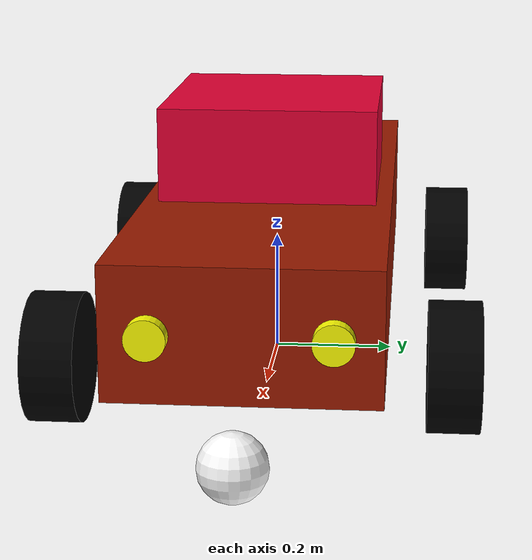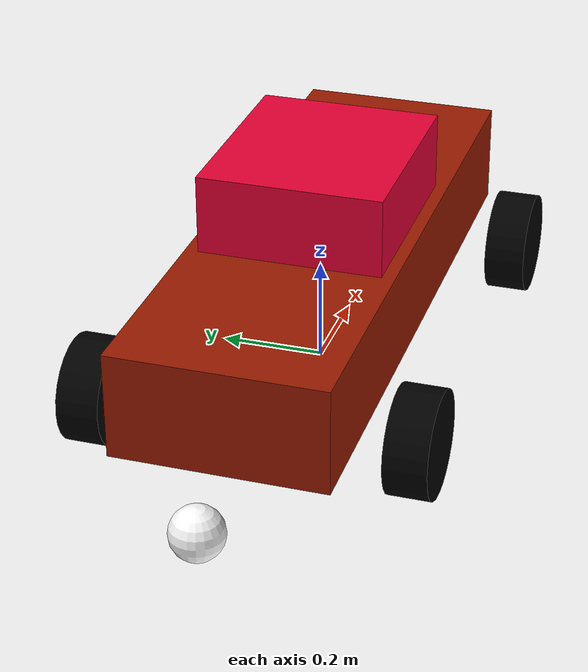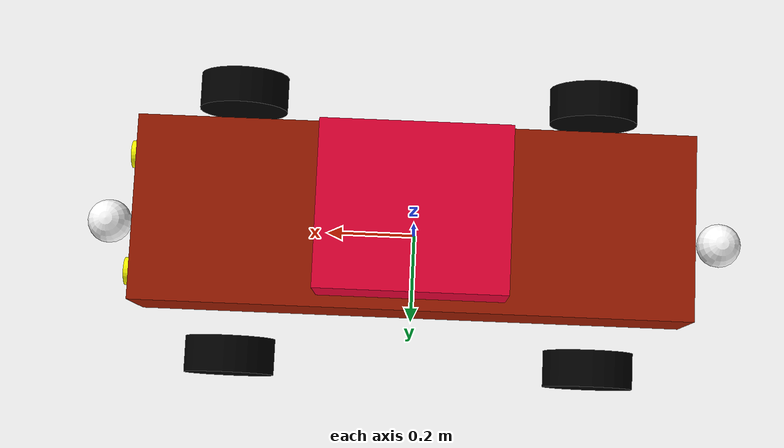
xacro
<?xml version="1.0"?>
<robot name="my_unique_robot" xmlns:xacro="http://ros.org/wiki/xacro">

  <!-- ====================== КОНСТАНТЫ ====================== -->
  <xacro:property name="wheel_radius" value="0.1"/>
  <xacro:property name="wheel_width"  value="0.08"/>
  <xacro:property name="base_size_x" value="1.2"/>   <!-- Длина основного прямоугольника (base_link) -->
  <xacro:property name="base_size_y" value="0.4"/>   <!-- Ширина -->
  <xacro:property name="base_height" value="0.2"/>   <!-- Высота -->
  <xacro:property name="upper_size_x" value="0.4"/>  <!-- Длина верхнего прямоугольника (меньше) -->
  <xacro:property name="upper_size_y" value="0.35"/> <!-- Ширина -->
  <xacro:property name="upper_height" value="0.15"/>  <!-- Высота -->
  <xacro:property name="caster_radius" value="0.05"/>
  <xacro:property name="wheel_offset_y" value="0.3"/> <!-- Смещение колёс по Y -->
  <xacro:property name="front_wheel_offset_x" value="0.4"/>  <!-- Смещение передних колёс по X (вперёд) -->
  <xacro:property name="rear_wheel_offset_x" value="-0.4"/>  <!-- Смещение задних колёс по X (назад) -->
  <xacro:property name="headlight_radius" value="0.03"/>     <!-- Радиус фар (маленькие цилиндры) -->
  <xacro:property name="headlight_length" value="0.05"/>     <!-- Длина фар -->
  <xacro:property name="headlight_offset_y" value="0.13"/>   <!-- Смещение фар по Y (в стороны) -->
  <xacro:property name="caster_offset_x" value="0.70"/>

  <!-- ====================== МАТЕРИАЛЫ ====================== -->
  <material name="blue"><color rgba="0 0 0.8 1"/></material>
  <material name="black"><color rgba="0 0 0 1"/></material>
  <material name="white"><color rgba="1 1 1 1"/></material>
  <material name="red_down"><color rgba="0.6 0.1 0 1"/></material>  <!-- Для нижнего -->
  <material name="red_up"><color rgba="0.9 0 0.2 1"/></material>    <!-- Для верхнего -->
  <material name="yellow"><color rgba="1 1 0 1"/></material>        <!-- Для фар (жёлтый свет) -->

  <!-- ====================== МАКРОС ДЛЯ КОЛЕСА ====================== -->
  <xacro:macro name="wheel" params="name reflect_y offset_x">  <!-- Добавлен offset_x для передних/задних -->
    <link name="${name}_wheel">
      <visual>
        <origin xyz="0 0 0" rpy="1.5708 0 0"/>
        <geometry>
          <cylinder radius="${wheel_radius}" length="${wheel_width}"/>
        </geometry>
        <material name="black"/>
      </visual>
      <collision>
        <origin xyz="0 0 0" rpy="1.5708 0 0"/>
        <geometry>
          <cylinder radius="${wheel_radius}" length="${wheel_width}"/>
        </geometry>
      </collision>
      <inertial>
        <mass value="2.0"/>
        <inertia ixx="0.03" ixy="0" ixz="0" iyy="0.03" iyz="0" izz="0.01"/>
      </inertial>
    </link>
    <joint name="${name}_wheel_joint" type="continuous">
      <parent link="base_link"/>
      <child link="${name}_wheel"/>
      <origin xyz="${offset_x} ${reflect_y * wheel_offset_y} ${wheel_radius}" rpy="0 0 0"/>  <!-- Добавлен offset_x -->
      <axis xyz="0 1 0"/>
    </joint>
  </xacro:macro>

  <!-- ====================== МАКРОС ДЛЯ ФАРЫ (маленький цилиндр) ====================== -->
  <xacro:macro name="headlight" params="name reflect_y">
    <link name="${name}_headlight">
      <visual>
        <origin xyz="0 0 0" rpy="0 1.5708 0"/>  <!-- Ориентация горизонтально (как фара) -->
        <geometry>
          <cylinder radius="${headlight_radius}" length="${headlight_length}"/>
        </geometry>
        <material name="yellow"/>
      </visual>
      <collision>
        <origin xyz="0 0 0" rpy="0 1.5708 0"/>
        <geometry>
          <cylinder radius="${headlight_radius}" length="${headlight_length}"/>
        </geometry>
      </collision>
      <inertial>
        <mass value="0.1"/>  <!-- Лёгкие фары -->
        <inertia ixx="0.001" ixy="0" ixz="0" iyy="0.001" iyz="0" izz="0.0005"/>
      </inertial>
    </link>
    <joint name="${name}_headlight_joint" type="fixed">
      <parent link="base_link"/>
      <child link="${name}_headlight"/>
      <origin xyz="${base_size_x / 2} ${reflect_y * headlight_offset_y} ${base_height }" rpy="0 0 0"/>  <!-- Вперёд на "морду", по бокам -->
    </joint>
  </xacro:macro>

  <!-- ====================== ОСНОВНОЙ КОРПУС (нижний прямоугольник) ====================== -->
  <link name="base_link">
    <visual>
      <origin xyz="0 0 ${wheel_radius + base_height / 2}" rpy="0 0 0"/>  <!-- Сдвиг вверх для выравнивания по земле -->
      <geometry>
        <box size="${base_size_x} ${base_size_y} ${base_height}"/>  <!-- Изменено на прямоугольник (box) -->
      </geometry>
      <material name="red_down"/>
    </visual>
    <collision>
      <origin xyz="0 0 ${wheel_radius + base_height / 2}" rpy="0 0 0"/>
      <geometry>
        <box size="${base_size_x} ${base_size_y} ${base_height}"/>
      </geometry>
    </collision>
    <inertial>
      <mass value="15.0"/>
      <inertia ixx="1.0" ixy="0" ixz="0" iyy="1.0" iyz="0" izz="0.8"/>
    </inertial>
  </link>

  <!-- ====================== ВЕРХНИЙ ПРЯМОУГОЛЬНИК (над base_link) ====================== -->
  <link name="upper_body">
    <visual>
      <origin xyz="0 0 ${base_height}" rpy="0 0 0"/>  <!-- Сдвиг относительно joint -->
      <geometry>
        <box size="${upper_size_x} ${upper_size_y} ${upper_height}"/>  <!-- Меньший прямоугольник -->
      </geometry>
      <material name="red_up"/>  <!-- Другой цвет для уникальности -->
    </visual>
    <collision>
      <origin xyz="0 0 ${upper_height / 2}" rpy="0 0 0"/>
      <geometry>
        <box size="${upper_size_x} ${upper_size_y} ${upper_height}"/>
      </geometry>
    </collision>
    <inertial>
      <mass value="5.0"/>  <!-- Меньшая масса для верхней части -->
      <inertia ixx="0.4" ixy="0" ixz="0" iyy="0.4" iyz="0" izz="0.3"/>
    </inertial>
  </link>

  <!-- Сустав для прикрепления верхнего прямоугольника к base_link (fixed - неподвижный) -->
  <joint name="upper_body_joint" type="fixed">
    <parent link="base_link"/>
    <child link="upper_body"/>
    <origin xyz="0 0 ${base_height / 2 + upper_height / 2}" rpy="0 0 0"/>  <!-- Сдвиг вверх, чтобы верхний стоял на нижнем -->
  </joint>

  <!-- ====================== КОЛЁСА (передние и задние пары) ====================== -->
  <!-- Передние колёса (сдвинуты вперёд) -->
  <xacro:wheel name="front_left" reflect_y="1" offset_x="${front_wheel_offset_x}"/>
  <xacro:wheel name="front_right" reflect_y="-1" offset_x="${front_wheel_offset_x}"/>

  <!-- Задние колёса (сдвинуты назад) -->
  <xacro:wheel name="rear_left" reflect_y="1" offset_x="${rear_wheel_offset_x}"/>
  <xacro:wheel name="rear_right" reflect_y="-1" offset_x="${rear_wheel_offset_x}"/>

  <!-- ====================== ФАРЫ (два маленьких цилиндра вперёд) ====================== -->
  <xacro:headlight name="left" reflect_y="1"/>
  <xacro:headlight name="right" reflect_y="-1"/>

  <!-- ====================== КАСТЕРЫ (оставляем как есть) ====================== -->
  <xacro:macro name="caster" params="name x">
    <link name="${name}">
      <visual>
        <geometry><sphere radius="${caster_radius}"/></geometry>
        <material name="white"/>
      </visual>
      <collision>
        <geometry><sphere radius="${caster_radius}"/></geometry>
      </collision>
      <inertial>
        <mass value="0.5"/>
        <inertia ixx="0.001" ixy="0" ixz="0" iyy="0.001" iyz="0" izz="0.001"/>
      </inertial>
    </link>
    <joint name="${name}_joint" type="fixed">
      <parent link="base_link"/>
      <child link="${name}"/>
      <origin xyz="${x} 0 ${caster_radius}"/>  <!-- Сдвиг по z на радиус -->
    </joint>
  </xacro:macro>
  <xacro:caster name="caster_front" x="${caster_offset_x}"/>
  <xacro:caster name="caster_back"  x="-${caster_offset_x}"/>

  <!-- ====================== ЛИДАР ====================== -->
  <xacro:property name="lidar_radius" value="0.05"/>
  <xacro:property name="lidar_height" value="0.1"/>
  <xacro:property name="lidar_offset_z" value="0.2"/>

  <!-- Ссылка для лидара -->
  <link name="lidar_link">
    <visual>
      <origin xyz="0 0 0" rpy="0 0 0"/>
      <geometry>
        <cylinder radius="${lidar_radius}" length="${lidar_height}"/>
      </geometry>
      <material name="blue"/>
    </visual>
    <inertial>
      <mass value="0.2"/>
      <inertia ixx="0.001" ixy="0" ixz="0" iyy="0.001" iyz="0" izz="0.0005"/>
    </inertial>
  </link>

  <!-- Сустав для крепления лидара (в центре верхней части) -->
  <joint name="lidar_joint" type="fixed">
    <parent link="upper_body"/>
    <child link="lidar_link"/>
    <origin xyz="0 0 ${lidar_offset_z}" rpy="0 0 0"/>  <!-- Исправлено с 2.0 на ${lidar_offset_z} для реализма -->
  </joint>

  <xacro:include filename="$(find my_unique_robot_gazebo)/config/robot.gazebo.xacro" />

</robot>
